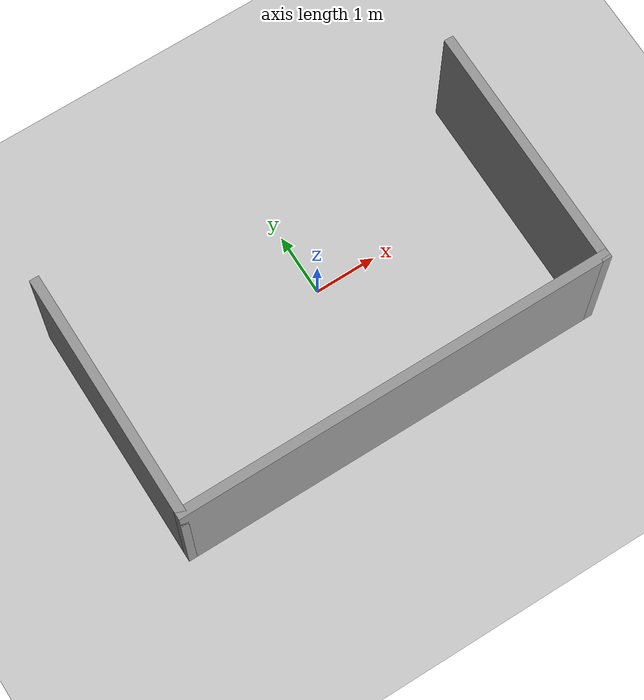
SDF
<sdf version="1.7">
 <world name="default">
  <model name="ground_plane">
   <static>1</static>
   <link name="link">
    <collision name="collision">
     <geometry><plane><normal>0 0 1</normal><size>100 100</size></plane></geometry>
     <surface>
      <contact><collide_bitmask>65535</collide_bitmask></contact>
      <friction><ode><mu>100</mu><mu2>50</mu2></ode></friction>
     </surface>
    </collision>
    <visual name="visual">
     <cast_shadows>0</cast_shadows>
     <geometry><plane><normal>0 0 1</normal><size>100 100</size></plane></geometry>
     <material>
      <script><uri>file://media/materials/scripts/gazebo.material</uri><name>Gazebo/Grey</name></script>
     </material>
    </visual>
   </link>
  </model>
  <gravity>0 0 -9.8</gravity>
  <magnetic_field>6e-06 2.3e-05 -4.2e-05</magnetic_field>
  <atmosphere type="adiabatic"/>
  <physics type="ode">
   <max_step_size>0.001</max_step_size>
   <real_time_factor>1</real_time_factor>
   <real_time_update_rate>1000</real_time_update_rate>
  </physics>
  <scene><ambient>0.4 0.4 0.4 1</ambient><background>0.7 0.7 0.7 1</background><shadows>1</shadows></scene>
  <spherical_coordinates>
   <surface_model>EARTH_WGS84</surface_model>
   <latitude_deg>0</latitude_deg>
   <longitude_deg>0</longitude_deg>
   <elevation>0</elevation>
   <heading_deg>0</heading_deg>
  </spherical_coordinates>
  <light name="user_spot_light_0" type="spot">
   <pose>0.009508 5.38077 1 0 -0 0</pose>
   <diffuse>0.5 0.5 0.5 1</diffuse>
   <specular>0.1 0.1 0.1 1</specular>
   <direction>0 0 -1</direction>
   <attenuation>
    <range>20</range>
    <constant>0.5</constant>
    <linear>0.01</linear>
    <quadratic>0.001</quadratic>
   </attenuation>
   <cast_shadows>0</cast_shadows>
   <spot><inner_angle>0.6</inner_angle><outer_angle>1</outer_angle><falloff>1</falloff></spot>
  </light>
  <light name="user_point_light_0" type="point">
   <pose>-3.30286 -7.75106 1 0 -0 0</pose>
   <diffuse>0.5 0.5 0.5 1</diffuse>
   <specular>0.1 0.1 0.1 1</specular>
   <attenuation>
    <range>20</range>
    <constant>0.5</constant>
    <linear>0.01</linear>
    <quadratic>0.001</quadratic>
   </attenuation>
   <cast_shadows>0</cast_shadows>
   <direction>0 0 -1</direction>
   <spot><inner_angle>0</inner_angle><outer_angle>0</outer_angle><falloff>0</falloff></spot>
  </light>
  <light name="user_spot_light_1" type="spot">
   <pose>3.13115 -0.011683 1 0 -0 0</pose>
   <diffuse>0.5 0.5 0.5 1</diffuse>
   <specular>0.1 0.1 0.1 1</specular>
   <direction>0 0 -1</direction>
   <attenuation>
    <range>20</range>
    <constant>0.5</constant>
    <linear>0.01</linear>
    <quadratic>0.001</quadratic>
   </attenuation>
   <cast_shadows>0</cast_shadows>
   <spot><inner_angle>0.6</inner_angle><outer_angle>1</outer_angle><falloff>1</falloff></spot>
  </light>
  <model name="walls">
   <pose>-0.243977 -0.4945 0 0 -0 0</pose>
   <link name="Wall_13">
    <collision name="Wall_13_Collision">
     <geometry><box><size>7 0.15 2.5</size></box></geometry>
     <pose>0 0 1.25 0 -0 0</pose>
    </collision>
    <visual name="Wall_13_Visual">
     <pose>0 0 1.25 0 -0 0</pose>
     <geometry><box><size>7 0.15 2.5</size></box></geometry>
     <material>
      <script><uri>file://media/materials/scripts/gazebo.material</uri><name>Gazebo/Grey</name></script>
      <ambient>1 1 1 1</ambient>
     </material>
     <meta><layer>0</layer></meta>
    </visual>
    <pose>0 -1.925 0 0 -0 0</pose>
   </link>
   <link name="Wall_14">
    <collision name="Wall_14_Collision">
     <geometry><box><size>0.15 0.15 2.5</size></box></geometry>
     <pose>0 0 1.25 0 -0 0</pose>
    </collision>
    <visual name="Wall_14_Visual">
     <pose>0 0 1.25 0 -0 0</pose>
     <geometry><box><size>0.15 0.15 2.5</size></box></geometry>
     <material>
      <script><uri>file://media/materials/scripts/gazebo.material</uri><name>Gazebo/Grey</name></script>
      <ambient>1 1 1 1</ambient>
     </material>
     <meta><layer>0</layer></meta>
    </visual>
    <pose>3.425 -1.925 0 0 -0 0</pose>
   </link>
   <link name="Wall_22">
    <collision name="Wall_22_Collision">
     <geometry><box><size>4 0.15 2.5</size></box></geometry>
     <pose>0 0 1.25 0 -0 0</pose>
    </collision>
    <visual name="Wall_22_Visual">
     <pose>0 0 1.25 0 -0 0</pose>
     <geometry><box><size>4 0.15 2.5</size></box></geometry>
     <material>
      <script><uri>file://media/materials/scripts/gazebo.material</uri><name>Gazebo/Grey</name></script>
      <ambient>1 1 1 1</ambient>
     </material>
     <meta><layer>0</layer></meta>
    </visual>
    <pose>3.425 -0 0 0 -0 1.5708</pose>
   </link>
   <link name="Wall_24">
    <collision name="Wall_24_Collision">
     <geometry><box><size>4 0.15 2.5</size></box></geometry>
     <pose>0 0 1.25 0 -0 0</pose>
    </collision>
    <visual name="Wall_24_Visual">
     <pose>0 0 1.25 0 -0 0</pose>
     <geometry><box><size>4 0.15 2.5</size></box></geometry>
     <material>
      <script><uri>file://media/materials/scripts/gazebo.material</uri><name>Gazebo/Grey</name></script>
      <ambient>1 1 1 1</ambient>
     </material>
     <meta><layer>0</layer></meta>
    </visual>
    <pose>-3.425 -0 0 0 -0 1.5708</pose>
   </link>
   <static>1</static>
  </model>
 </world>
</sdf>
